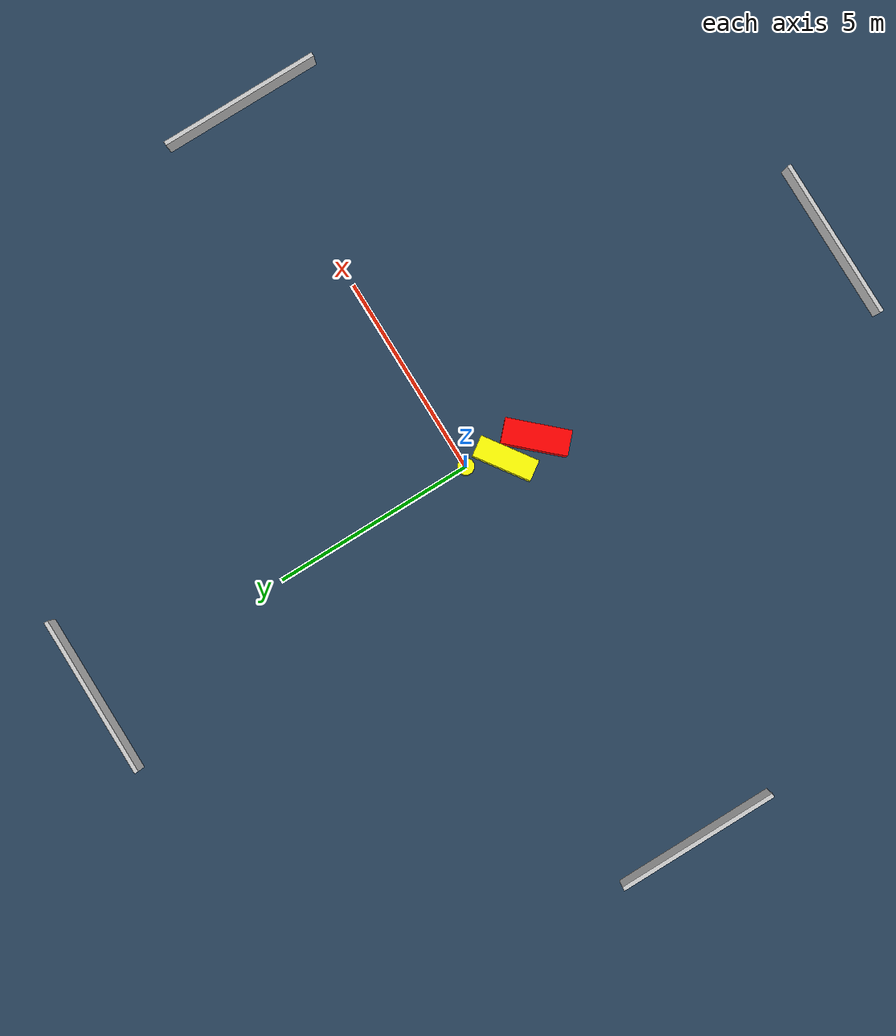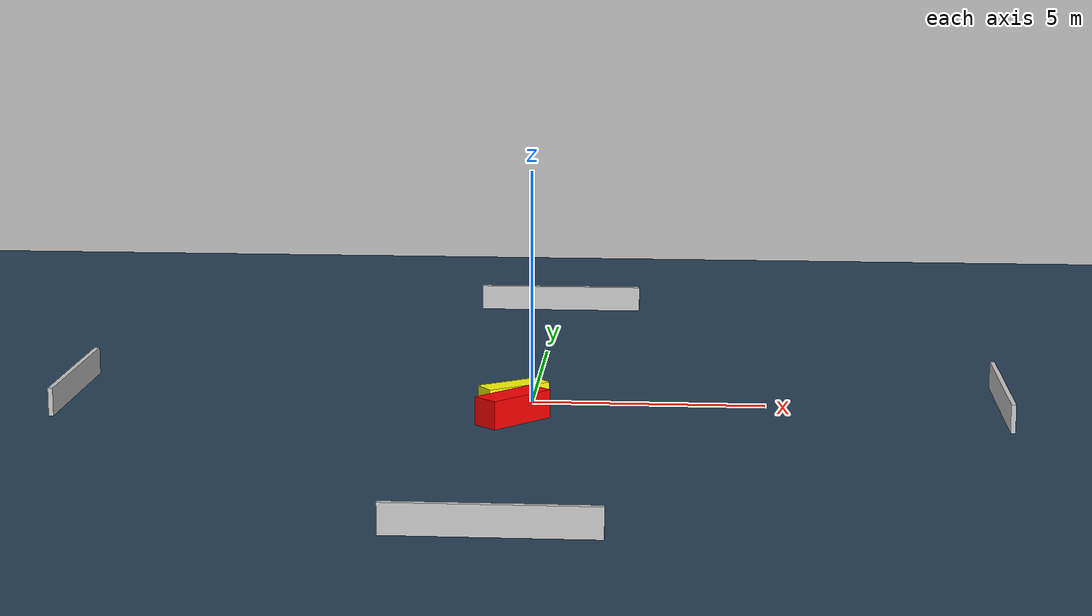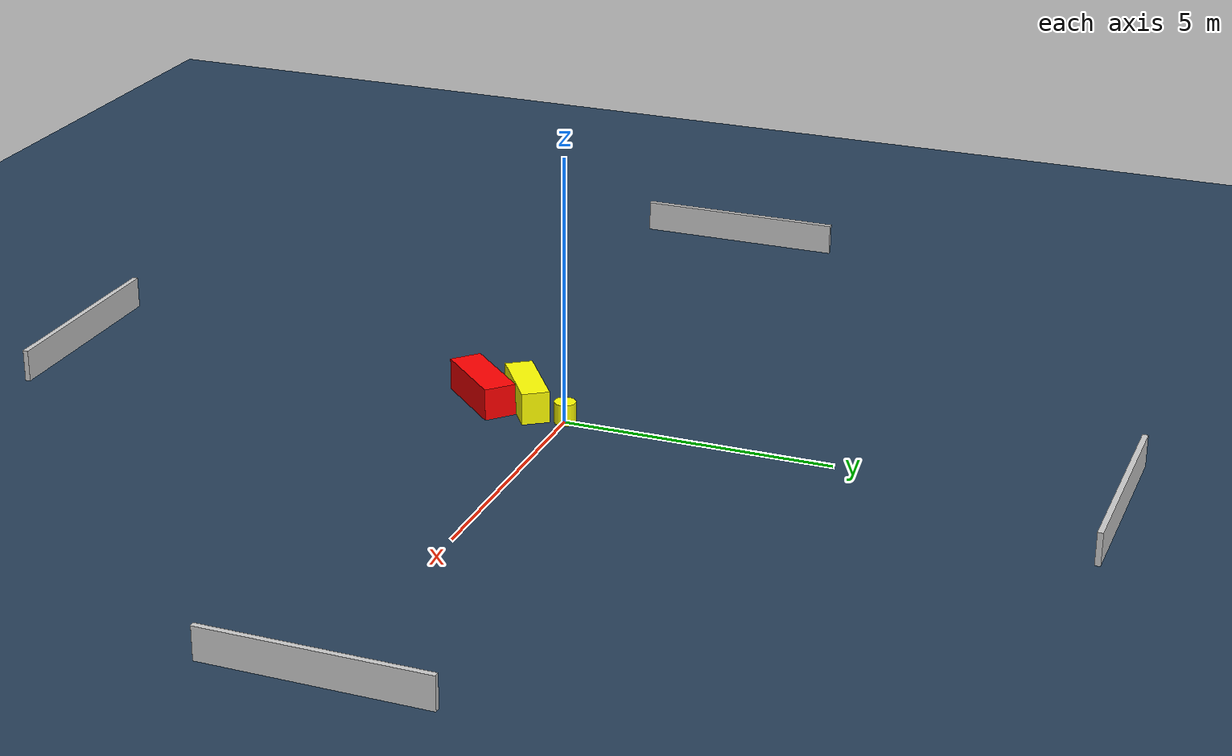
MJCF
<?xml version="1.0" ?>
<mujoco model="generated_environment">
  <option timestep="0.01" integrator="RK4" cone="elliptic"/>
  <default>
    <geom density="1"/>
  </default>
  <asset>
    <texture builtin="gradient" height="3072" name="skybox" rgb1="0.3 0.5 0.7" rgb2="0 0 0" type="skybox" width="512"/>
    <texture builtin="checker" height="300" name="groundplane" rgb1="0.2 0.3 0.4" rgb2="0.1 0.2 0.3" type="2d" width="300"/>
    <material name="groundplane" reflectance="0.2" texrepeat="5 5" texture="groundplane"/>
  </asset>
  <worldbody>
    <light dir="0 0 -1" directional="true" pos="0 0 1.5"/>
    <geom condim="3" friction="0.5 0.005 0.001" material="groundplane" name="floor" pos="0 0 0" size="0 0 0.05" type="plane"/>
    <body name="walls">
      <geom name="wall_1" condim="4" pos="-10.0 0.0 0.3" rgba="0.800000011920929 0.800000011920929 0.800000011920929 1.0" size="0.05 2.0 0.3" type="box"/>
      <geom name="wall_2" condim="4" pos="10.0 0.0 0.3" rgba="0.800000011920929 0.800000011920929 0.800000011920929 1.0" size="0.05 2.0 0.3" type="box"/>
      <geom name="wall_3" condim="4" pos="0.0 -10.0 0.3" rgba="0.800000011920929 0.800000011920929 0.800000011920929 1.0" size="2.0 0.05 0.3" type="box"/>
      <geom name="wall_4" condim="4" pos="0.0 10.0 0.3" rgba="0.800000011920929 0.800000011920929 0.800000011920929 1.0" size="2.0 0.05 0.3" type="box"/>
    </body>
    <body name="robot">
      <joint name="joint_x" type="slide" pos="0 0 0" axis="1 0 0"/>
      <joint name="joint_y" type="slide" pos="0 0 0" axis="0 1 0"/>
      <geom name="robot" type="cylinder" pos="0.0 0.0 0.2" size="0.2 0.2 0.0" mass="5.0" friction="1.0 0.005 0.0001" condim="4" rgba="1.0 1.0 0.0 1.0"/>
    </body>
    <body name="obstacle_1_movable">
      <geom name="obstacle_1_movable" condim="4" pos="-0.32513611949355703 -0.8716706131288638 0.3" euler="0 0 214.7689815712577" friction="0.0 0.005 0.001" rgba="1.0 1.0 0.0 1.0" size="0.7251478185897198 0.25720088300559685 0.3" type="box" mass="0.1"/>
      <joint type="free"/>
    </body>
    <body name="obstacle_2_static">
      <geom name="obstacle_2_static" condim="4" pos="-0.27618968854979176 -1.7290381299027922 0.3" euler="0 0 137.14808538450876" friction="0.0 0.005 0.001" rgba="1.0 0.0 0.0 1.0" size="0.30248928610497655 0.7859456506266753 0.3" type="box"/>
    </body>
  </worldbody>
  <actuator>
    <motor name="actuator_x" joint="joint_x" gear="1" ctrlrange="-1 1"/>
    <motor name="actuator_y" joint="joint_y" gear="1" ctrlrange="-1 1"/>
  </actuator>
</mujoco>
